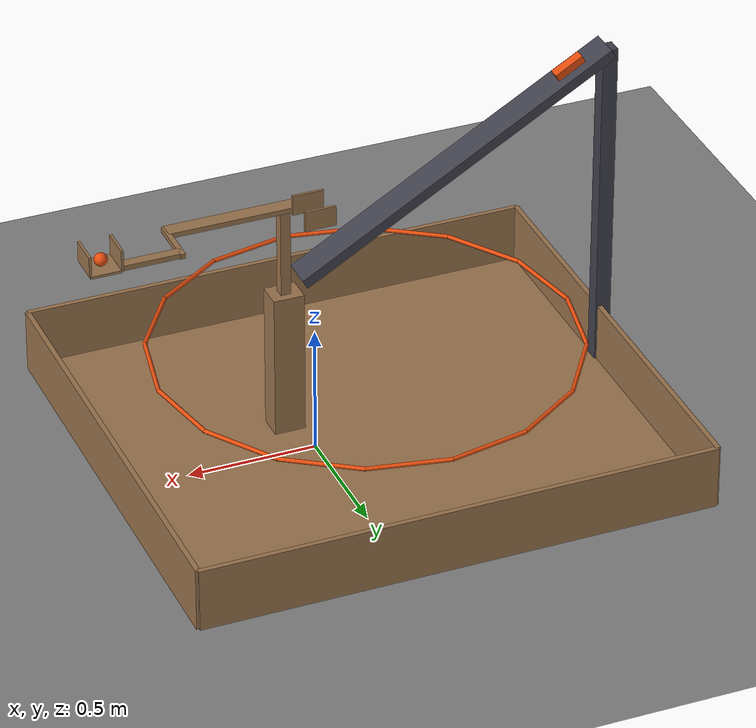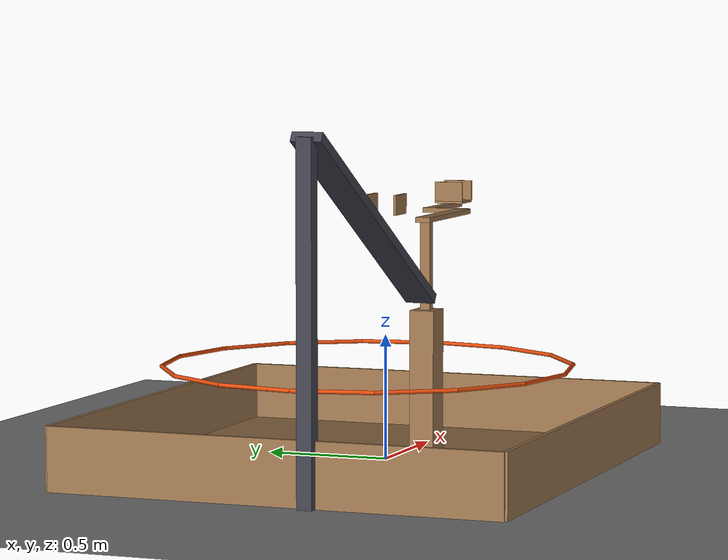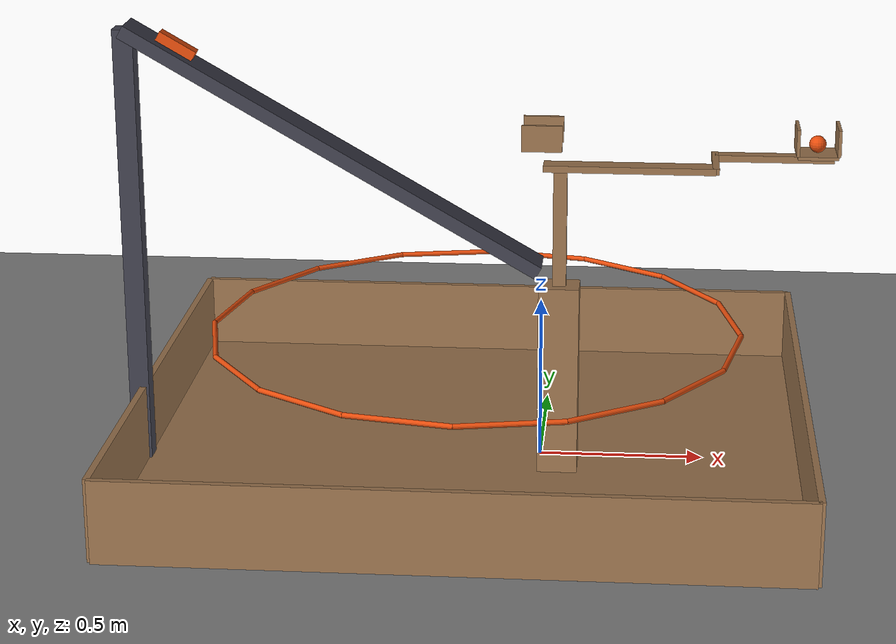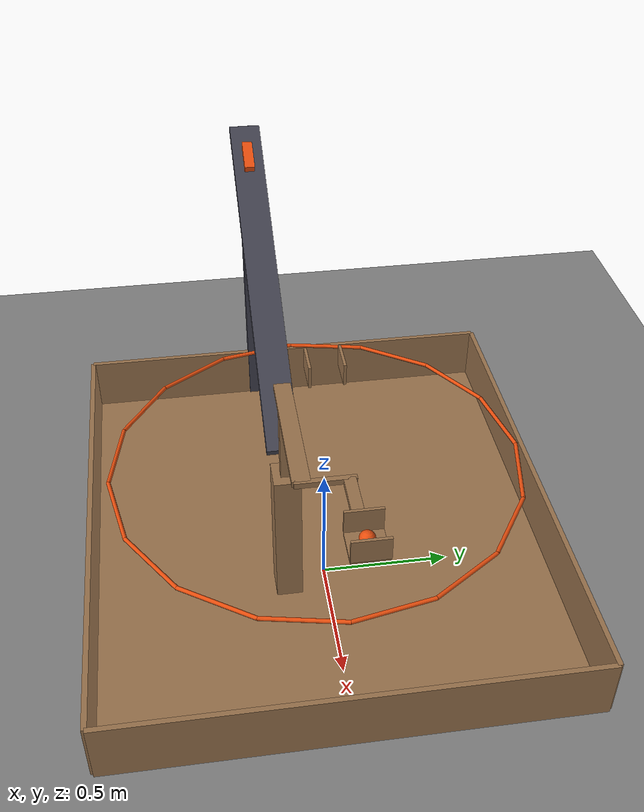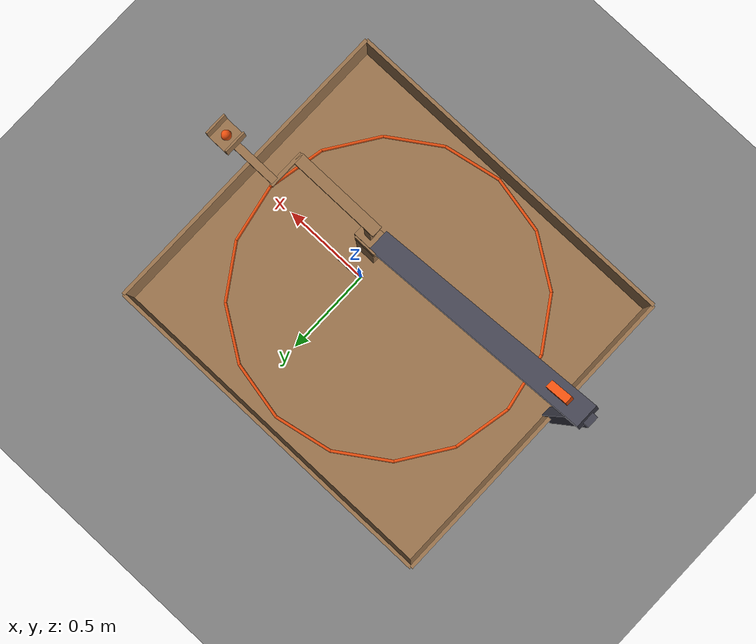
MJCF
<mujoco model="cart_domino_stopped_flap_release">
  <compiler angle="radian"/>
  <option timestep="0.002"/>
  <worldbody>
    <geom name="floor" type="plane" size="6 6 0.1" friction="0.8 0.005 0.002"/>
    <body name="rail">
      <geom name="rail" type="box" pos="-0.606218 -0.15 1" size="0.7 0.06 0.02" euler="0 0.523599 0" friction="0.02 0.005 0.0001" solref="0.01 1" rgba="0.25 0.25 0.3 1"/>
    </body>
    <body name="rail support">
      <geom name="rail support" type="box" pos="-1.21244 -0.15 0.675" size="0.03 0.03 0.675" rgba="0.25 0.25 0.3 1"/>
    </body>
    <body name="domino support">
      <geom name="domino support" type="box" pos="0.06 -0.15 0.3" size="0.06 0.05 0.3" friction="0.65 0.005 0.0001" solref="0.01 1" rgba="0.6 0.45 0.3 1"/>
    </body>
    <body name="domino" pos="0.06 -0.15 0.775">
      <freejoint/>
      <geom name="domino" type="box" pos="0 0 0" size="0.02 0.02 0.175" mass="0.15" friction="0.65 0.005 0.0001" solref="0.01 1" rgba="0.6 0.45 0.3 1"/>
    </body>
    <body name="cart" pos="-1.05869 -0.15 1.30165">
      <freejoint/>
      <geom name="cart" type="box" pos="0 0 0" size="0.0600004 0.02 0.015" euler="0 0.523595 0" mass="0.8" friction="0.02 0.005 0.0001" solref="0.01 1" rgba="0.9 0.3 0.05 1"/>
    </body>
    <body name="flap" pos="0.51 -0.15 0.96">
      <joint name="flap_hinge" type="hinge" pos="0 0 0" axis="0 1 0" limited="true" range="-1.0472 0" stiffness="2" springref="-1.0472" damping="0.05" armature="0.003"/>
      <geom name="flap" type="box" pos="-0.25 0 0" size="0.25 0.03 0.01" mass="0.3" friction="0.15 0.005 0.0001" solref="0.01 1" rgba="0.6 0.45 0.3 1"/>
      <geom name="flap crossbar" type="box" pos="0 0.075 0" size="0.01 0.1 0.01" mass="0.05" friction="0.15 0.005 0.0001" solref="0.01 1" rgba="0.6 0.45 0.3 1"/>
      <geom name="flap counterarm" type="box" pos="0.175 0.15 0" size="0.175 0.02 0.01" mass="0.07" friction="0.15 0.005 0.0001" solref="0.01 1" rgba="0.6 0.45 0.3 1"/>
      <geom name="flap cup base" type="box" pos="0.3 0.15 0.015" size="0.06 0.06 0.005" mass="0.04" friction="0.15 0.005 0.0001" solref="0.01 1" rgba="0.6 0.45 0.3 1"/>
      <geom name="flap cup near wall" type="box" pos="0.24 0.15 0.06" size="0.005 0.06 0.04" mass="0.01" friction="0.15 0.005 0.0001" solref="0.01 1" rgba="0.6 0.45 0.3 1"/>
      <geom name="flap cup far wall" type="box" pos="0.36 0.15 0.06" size="0.005 0.06 0.04" mass="0.01" friction="0.15 0.005 0.0001" solref="0.01 1" rgba="0.6 0.45 0.3 1"/>
      <geom name="flap cup left wall" type="box" pos="-0.51 0.21 0.06" size="0.06 0.005 0.04" mass="0.01" friction="0.15 0.005 0.0001" solref="0.01 1" rgba="0.6 0.45 0.3 1"/>
      <geom name="flap cup right wall" type="box" pos="-0.51 0.09 0.06" size="0.06 0.005 0.04" mass="0.01" friction="0.15 0.005 0.0001" solref="0.01 1" rgba="0.6 0.45 0.3 1"/>
    </body>
    <body name="ball" pos="0.81 0 1.005">
      <freejoint/>
      <geom name="ball" type="sphere" pos="0 0 0" size="0.025" mass="0.1" condim="6" friction="0.2 0.02 0.01" solref="0.01 1" rgba="0.9 0.3 0.05 1"/>
    </body>
    <body name="ring">
      <geom name="ring_00" type="capsule" size="0.008" fromto="0.608 0 0.4 0.546495 0.309208 0.4" friction="0.1 0.005 0.0001" solref="0.01 1" rgba="0.9 0.3 0.05 1"/>
      <geom name="ring_01" type="capsule" size="0.008" fromto="0.546495 0.309208 0.4 0.371342 0.571342 0.4" friction="0.1 0.005 0.0001" solref="0.01 1" rgba="0.9 0.3 0.05 1"/>
      <geom name="ring_02" type="capsule" size="0.008" fromto="0.371342 0.571342 0.4 0.109208 0.746495 0.4" friction="0.1 0.005 0.0001" solref="0.01 1" rgba="0.9 0.3 0.05 1"/>
      <geom name="ring_03" type="capsule" size="0.008" fromto="0.109208 0.746495 0.4 -0.2 0.808 0.4" friction="0.1 0.005 0.0001" solref="0.01 1" rgba="0.9 0.3 0.05 1"/>
      <geom name="ring_04" type="capsule" size="0.008" fromto="-0.2 0.808 0.4 -0.509208 0.746495 0.4" friction="0.1 0.005 0.0001" solref="0.01 1" rgba="0.9 0.3 0.05 1"/>
      <geom name="ring_05" type="capsule" size="0.008" fromto="-0.509208 0.746495 0.4 -0.771342 0.571342 0.4" friction="0.1 0.005 0.0001" solref="0.01 1" rgba="0.9 0.3 0.05 1"/>
      <geom name="ring_06" type="capsule" size="0.008" fromto="-0.771342 0.571342 0.4 -0.946495 0.309208 0.4" friction="0.1 0.005 0.0001" solref="0.01 1" rgba="0.9 0.3 0.05 1"/>
      <geom name="ring_07" type="capsule" size="0.008" fromto="-0.946495 0.309208 0.4 -1.008 9.89515e-17 0.4" friction="0.1 0.005 0.0001" solref="0.01 1" rgba="0.9 0.3 0.05 1"/>
      <geom name="ring_08" type="capsule" size="0.008" fromto="-1.008 9.89515e-17 0.4 -0.946495 -0.309208 0.4" friction="0.1 0.005 0.0001" solref="0.01 1" rgba="0.9 0.3 0.05 1"/>
      <geom name="ring_09" type="capsule" size="0.008" fromto="-0.946495 -0.309208 0.4 -0.771342 -0.571342 0.4" friction="0.1 0.005 0.0001" solref="0.01 1" rgba="0.9 0.3 0.05 1"/>
      <geom name="ring_10" type="capsule" size="0.008" fromto="-0.771342 -0.571342 0.4 -0.509208 -0.746495 0.4" friction="0.1 0.005 0.0001" solref="0.01 1" rgba="0.9 0.3 0.05 1"/>
      <geom name="ring_11" type="capsule" size="0.008" fromto="-0.509208 -0.746495 0.4 -0.2 -0.808 0.4" friction="0.1 0.005 0.0001" solref="0.01 1" rgba="0.9 0.3 0.05 1"/>
      <geom name="ring_12" type="capsule" size="0.008" fromto="-0.2 -0.808 0.4 0.109208 -0.746495 0.4" friction="0.1 0.005 0.0001" solref="0.01 1" rgba="0.9 0.3 0.05 1"/>
      <geom name="ring_13" type="capsule" size="0.008" fromto="0.109208 -0.746495 0.4 0.371342 -0.571342 0.4" friction="0.1 0.005 0.0001" solref="0.01 1" rgba="0.9 0.3 0.05 1"/>
      <geom name="ring_14" type="capsule" size="0.008" fromto="0.371342 -0.571342 0.4 0.546495 -0.309208 0.4" friction="0.1 0.005 0.0001" solref="0.01 1" rgba="0.9 0.3 0.05 1"/>
      <geom name="ring_15" type="capsule" size="0.008" fromto="0.546495 -0.309208 0.4 0.608 -1.97903e-16 0.4" friction="0.1 0.005 0.0001" solref="0.01 1" rgba="0.9 0.3 0.05 1"/>
    </body>
    <body name="box">
      <geom name="box_base" type="box" pos="-0.2 0 0.01" size="1 0.9 0.01" friction="1 0.02 0.01" solref="0.01 1" rgba="0.6 0.45 0.3 1"/>
      <geom name="box_near_wall" type="box" pos="-1.2 0 0.125" size="0.01 0.9 0.125" friction="1 0.02 0.01" solref="0.01 1" rgba="0.6 0.45 0.3 1"/>
      <geom name="box_far_wall" type="box" pos="0.8 0 0.125" size="0.01 0.9 0.125" friction="1 0.02 0.01" solref="0.01 1" rgba="0.6 0.45 0.3 1"/>
      <geom name="box_left_wall" type="box" pos="-0.2 0.9 0.125" size="1 0.01 0.125" friction="1 0.02 0.01" solref="0.01 1" rgba="0.6 0.45 0.3 1"/>
      <geom name="box_right_wall" type="box" pos="-0.2 -0.9 0.125" size="1 0.01 0.125" friction="1 0.02 0.01" solref="0.01 1" rgba="0.6 0.45 0.3 1"/>
    </body>
  </worldbody>
  <keyframe>
    <key name="start" qpos="0.06 -0.15 0.775 1 0 0 0 -1.05869 -0.15 1.30165 1 0 0 0 0 0.81 0 1.005 1 0 0 0" qvel="0 0 0 0 0 0 0 0 0 0 0 0 0 0 0 0 0 0 0"/>
  </keyframe>
</mujoco>
